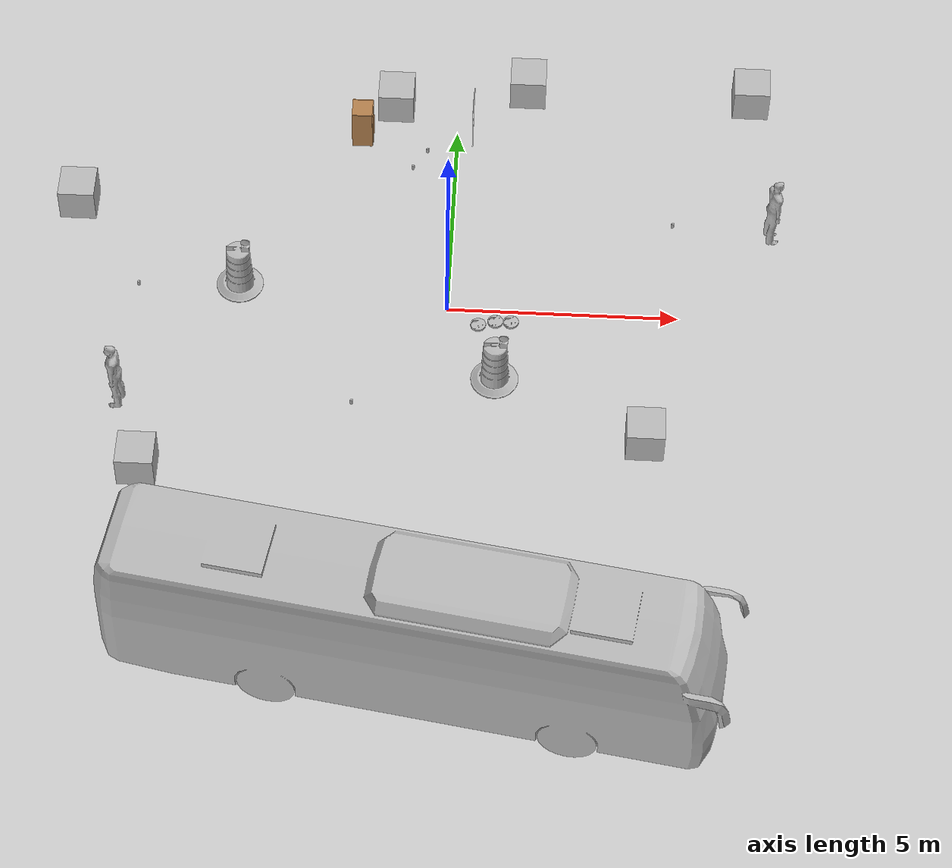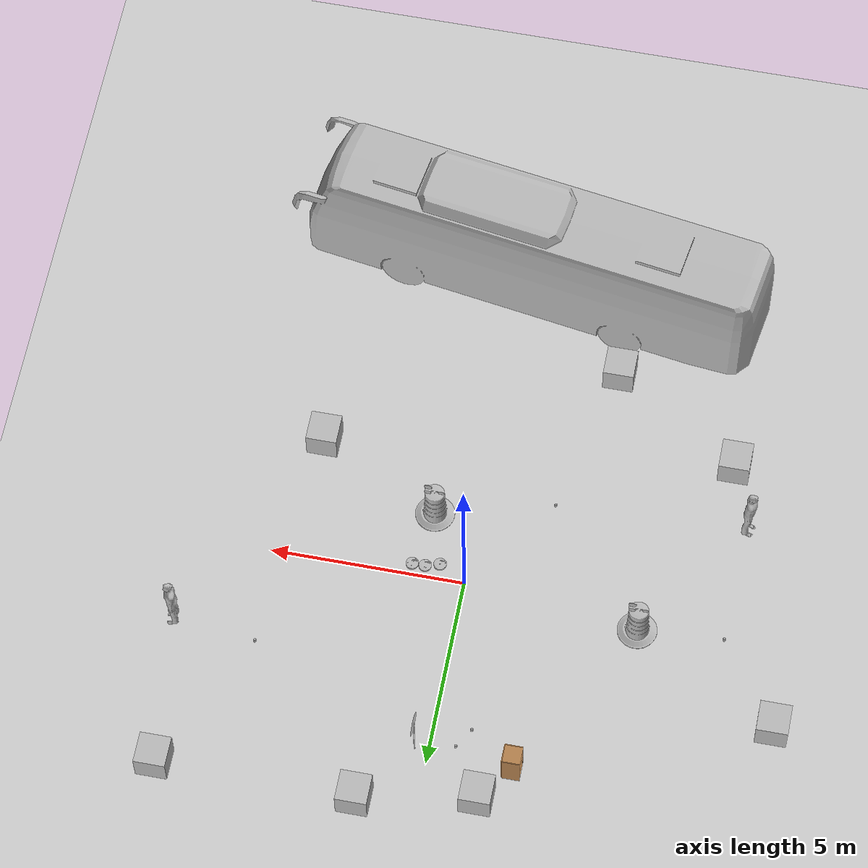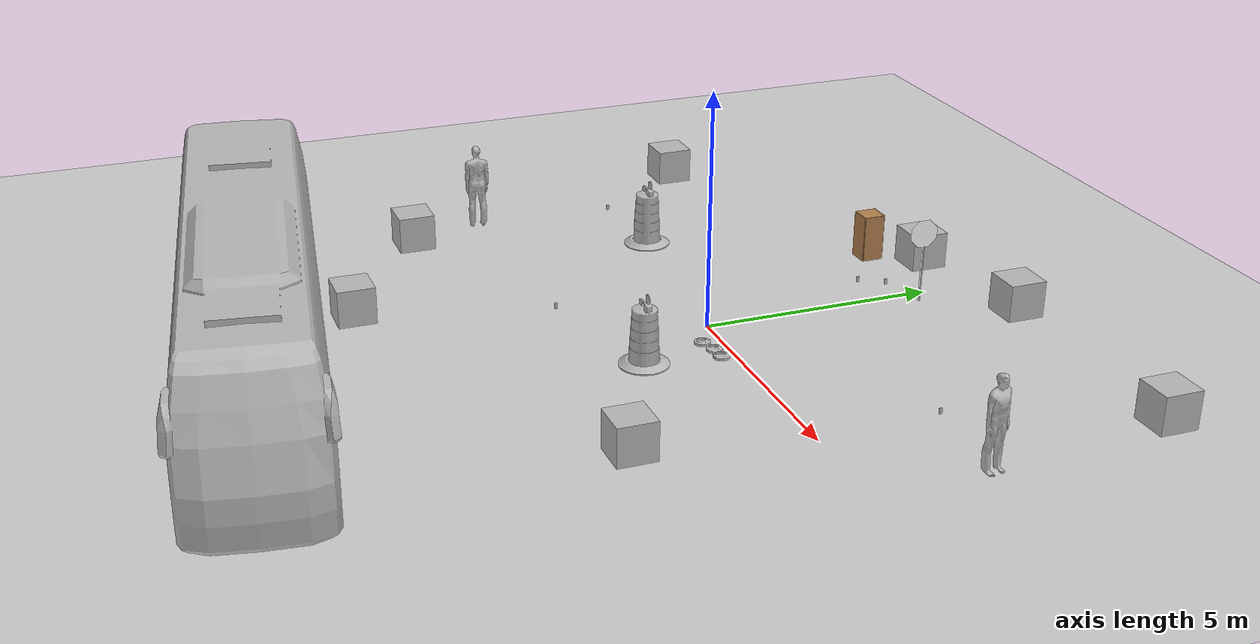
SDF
<sdf version="1.7">
 <world name="default">
  <light name="sun" type="directional">
   <pose>0 0 10 0 -0 0</pose>
   <diffuse>0.8 0.8 0.8 1</diffuse>
   <specular>0.2 0.2 0.2 1</specular>
   <attenuation>
    <range>1000</range>
    <constant>0.9</constant>
    <linear>0.01</linear>
    <quadratic>0.001</quadratic>
   </attenuation>
   <direction>-0.5 0.1 -0.9</direction>
   <spot><inner_angle>0</inner_angle><outer_angle>0</outer_angle><falloff>0</falloff></spot>
  </light>
  <model name="ground_plane">
   <static>1</static>
   <link name="link">
    <collision name="collision">
     <geometry><plane><normal>0 0 1</normal><size>100 100</size></plane></geometry>
     <surface>
      <contact><collide_bitmask>65535</collide_bitmask></contact>
      <friction><ode><mu>100</mu><mu2>50</mu2></ode></friction>
     </surface>
    </collision>
    <visual name="visual">
     <cast_shadows>0</cast_shadows>
     <geometry><plane><normal>0 0 1</normal><size>100 100</size></plane></geometry>
     <material>
      <script><uri>file://media/materials/scripts/gazebo.material</uri><name>Gazebo/Grey</name></script>
     </material>
    </visual>
   </link>
  </model>
  <physics type="ode">
   <real_time_update_rate>1000</real_time_update_rate>
   <max_step_size>0.001</max_step_size>
   <real_time_factor>1</real_time_factor>
   <ode>
    <solver>
     <type>quick</type>
     <iters>150</iters>
     <precon_iters>0</precon_iters>
     <sor>1.4</sor>
     <use_dynamic_moi_rescaling>1</use_dynamic_moi_rescaling>
    </solver>
    <constraints>
     <cfm>1e-05</cfm>
     <erp>0.2</erp>
     <contact_max_correcting_vel>2000</contact_max_correcting_vel>
     <contact_surface_layer>0.01</contact_surface_layer>
    </constraints>
   </ode>
  </physics>
  <scene><ambient>0.4 0.4 0.4 1</ambient><background>0.7 0.7 0.7 1</background><shadows>1</shadows></scene>
  <gravity>0 0 -9.8</gravity>
  <magnetic_field>6e-06 2.3e-05 -4.2e-05</magnetic_field>
  <atmosphere type="adiabatic"/>
  <spherical_coordinates>
   <surface_model>EARTH_WGS84</surface_model>
   <latitude_deg>0</latitude_deg>
   <longitude_deg>0</longitude_deg>
   <elevation>0</elevation>
   <heading_deg>0</heading_deg>
  </spherical_coordinates>
  <model name="bus">
   <static>1</static>
   <link name="link">
    <collision name="collision">
     <geometry><mesh><scale>0.01 0.01 0.01</scale><uri>model://bus/meshes/bus.obj</uri></mesh></geometry>
    </collision>
    <visual name="visual">
     <geometry><mesh><scale>0.01 0.01 0.01</scale><uri>model://bus/meshes/bus.obj</uri></mesh></geometry>
    </visual>
   </link>
   <pose>-0.158528 -9.10371 0 0 -0 1.41584</pose>
  </model>
  <model name="person_standing">
   <link name="link">
    <inertial>
     <pose>0 -0.1 0.95 0 -0 0</pose>
     <mass>80</mass>
     <inertia><ixx>24.88</ixx><ixy>0</ixy><ixz>0</ixz><iyy>25.73</iyy><iyz>0</iyz><izz>2.48</izz></inertia>
    </inertial>
    <collision name="bottom">
     <pose>0 -0.1 0.01 0 -0 0</pose>
     <geometry><box><size>0.5 0.35 0.02</size></box></geometry>
    </collision>
    <collision name="person">
     <pose>0 0 0.02 0.04 -0 0</pose>
     <geometry><mesh><uri>model://person_standing/meshes/standing.dae</uri></mesh></geometry>
    </collision>
    <visual name="visual">
     <pose>0 0 0.02 0.04 -0 0</pose>
     <geometry><mesh><uri>model://person_standing/meshes/standing.dae</uri></mesh></geometry>
    </visual>
   </link>
   <pose>-6.75911 -2.84509 0 0 -1e-06 -1.68288</pose>
  </model>
  <model name="coke_can">
   <link name="link">
    <inertial>
     <pose>0 0 0.06 0 -0 0</pose>
     <mass>0.39</mass>
     <inertia>
      <ixx>0.00055575</ixx>
      <ixy>0</ixy>
      <ixz>0</ixz>
      <iyy>0.00055575</iyy>
      <iyz>0</iyz>
      <izz>0.0001755</izz>
     </inertia>
    </inertial>
    <collision name="collision">
     <pose>0.003937 0.004724 -0.18 0 -0 0</pose>
     <geometry><mesh><uri>model://coke_can/meshes/coke_can.dae</uri></mesh></geometry>
     <surface>
      <friction><ode><mu>1</mu><mu2>1</mu2></ode></friction>
      <contact><ode><kp>1e+07</kp><kd>1</kd><min_depth>0.001</min_depth><max_vel>0.1</max_vel></ode></contact>
     </surface>
    </collision>
    <visual name="visual">
     <pose>0.003937 0.004724 -0.18 0 -0 0</pose>
     <geometry><mesh><uri>model://coke_can/meshes/coke_can.dae</uri></mesh></geometry>
    </visual>
   </link>
   <pose>-1.89973 -2.60244 -0.003529 -0.023468 0.008421 7.7e-05</pose>
  </model>
  <model name="coke_can_clone">
   <link name="link">
    <inertial>
     <pose>0 0 0.06 0 -0 0</pose>
     <mass>0.39</mass>
     <inertia>
      <ixx>0.00055575</ixx>
      <ixy>0</ixy>
      <ixz>0</ixz>
      <iyy>0.00055575</iyy>
      <iyz>0</iyz>
      <izz>0.0001755</izz>
     </inertia>
    </inertial>
    <collision name="collision">
     <pose>0.003937 0.004724 -0.18 0 -0 0</pose>
     <geometry><mesh><uri>model://coke_can/meshes/coke_can.dae</uri></mesh></geometry>
     <surface>
      <friction><ode><mu>1</mu><mu2>1</mu2></ode></friction>
      <contact><ode><kp>1e+07</kp><kd>1</kd><min_depth>0.001</min_depth><max_vel>0.1</max_vel></ode></contact>
     </surface>
    </collision>
    <visual name="visual">
     <pose>0.003937 0.004724 -0.18 0 -0 0</pose>
     <geometry><mesh><uri>model://coke_can/meshes/coke_can.dae</uri></mesh></geometry>
    </visual>
   </link>
   <pose>-0.953712 3.93311 -0.003529 -0.023468 0.008417 7.7e-05</pose>
  </model>
  <model name="coke_can_clone_0">
   <link name="link">
    <inertial>
     <pose>0 0 0.06 0 -0 0</pose>
     <mass>0.39</mass>
     <inertia>
      <ixx>0.00055575</ixx>
      <ixy>0</ixy>
      <ixz>0</ixz>
      <iyy>0.00055575</iyy>
      <iyz>0</iyz>
      <izz>0.0001755</izz>
     </inertia>
    </inertial>
    <collision name="collision">
     <pose>0.003937 0.004724 -0.18 0 -0 0</pose>
     <geometry><mesh><uri>model://coke_can/meshes/coke_can.dae</uri></mesh></geometry>
     <surface>
      <friction><ode><mu>1</mu><mu2>1</mu2></ode></friction>
      <contact><ode><kp>1e+07</kp><kd>1</kd><min_depth>0.001</min_depth><max_vel>0.1</max_vel></ode></contact>
     </surface>
    </collision>
    <visual name="visual">
     <pose>0.003937 0.004724 -0.18 0 -0 0</pose>
     <geometry><mesh><uri>model://coke_can/meshes/coke_can.dae</uri></mesh></geometry>
    </visual>
   </link>
   <pose>-6.73303 0.326526 -0.003529 -0.02347 0.008417 8.5e-05</pose>
  </model>
  <model name="coke_can_clone_1">
   <link name="link">
    <inertial>
     <pose>0 0 0.06 0 -0 0</pose>
     <mass>0.39</mass>
     <inertia>
      <ixx>0.00055575</ixx>
      <ixy>0</ixy>
      <ixz>0</ixz>
      <iyy>0.00055575</iyy>
      <iyz>0</iyz>
      <izz>0.0001755</izz>
     </inertia>
    </inertial>
    <collision name="collision">
     <pose>0.003937 0.004724 -0.18 0 -0 0</pose>
     <geometry><mesh><uri>model://coke_can/meshes/coke_can.dae</uri></mesh></geometry>
     <surface>
      <friction><ode><mu>1</mu><mu2>1</mu2></ode></friction>
      <contact><ode><kp>1e+07</kp><kd>1</kd><min_depth>0.001</min_depth><max_vel>0.1</max_vel></ode></contact>
     </surface>
    </collision>
    <visual name="visual">
     <pose>0.003937 0.004724 -0.18 0 -0 0</pose>
     <geometry><mesh><uri>model://coke_can/meshes/coke_can.dae</uri></mesh></geometry>
    </visual>
   </link>
   <pose>-0.647136 4.44399 -0.003529 -0.023463 0.008425 9.4e-05</pose>
  </model>
  <model name="coke_can_clone_2">
   <link name="link">
    <inertial>
     <pose>0 0 0.06 0 -0 0</pose>
     <mass>0.39</mass>
     <inertia>
      <ixx>0.00055575</ixx>
      <ixy>0</ixy>
      <ixz>0</ixz>
      <iyy>0.00055575</iyy>
      <iyz>0</iyz>
      <izz>0.0001755</izz>
     </inertia>
    </inertial>
    <collision name="collision">
     <pose>0.003937 0.004724 -0.18 0 -0 0</pose>
     <geometry><mesh><uri>model://coke_can/meshes/coke_can.dae</uri></mesh></geometry>
     <surface>
      <friction><ode><mu>1</mu><mu2>1</mu2></ode></friction>
      <contact><ode><kp>1e+07</kp><kd>1</kd><min_depth>0.001</min_depth><max_vel>0.1</max_vel></ode></contact>
     </surface>
    </collision>
    <visual name="visual">
     <pose>0.003937 0.004724 -0.18 0 -0 0</pose>
     <geometry><mesh><uri>model://coke_can/meshes/coke_can.dae</uri></mesh></geometry>
    </visual>
   </link>
   <pose>4.8657 2.56281 -0.003529 -0.023466 0.00842 0.000101</pose>
  </model>
  <model name="person_standing_clone">
   <link name="link">
    <inertial>
     <pose>0 -0.1 0.95 0 -0 0</pose>
     <mass>80</mass>
     <inertia><ixx>24.88</ixx><ixy>0</ixy><ixz>0</ixz><iyy>25.73</iyy><iyz>0</iyz><izz>2.48</izz></inertia>
    </inertial>
    <collision name="bottom">
     <pose>0 -0.1 0.01 0 -0 0</pose>
     <geometry><box><size>0.5 0.35 0.02</size></box></geometry>
    </collision>
    <collision name="person">
     <pose>0 0 0.02 0.04 -0 0</pose>
     <geometry><mesh><uri>model://person_standing/meshes/standing.dae</uri></mesh></geometry>
    </collision>
    <visual name="visual">
     <pose>0 0 0.02 0.04 -0 0</pose>
     <geometry><mesh><uri>model://person_standing/meshes/standing.dae</uri></mesh></geometry>
    </visual>
   </link>
   <pose>6.93446 2.30813 -0 -0 1e-06 1.78757</pose>
  </model>
  <model name="Stop Sign">
   <static>1</static>
   <link name="link">
    <collision name="collision">
     <geometry><mesh><uri>model://stop_sign/meshes/stop_sign.dae</uri></mesh></geometry>
    </collision>
    <visual name="visual">
     <geometry><mesh><uri>model://stop_sign/meshes/stop_sign.dae</uri></mesh></geometry>
     <material>
      <script>
       <uri>model://stop_sign/materials/scripts</uri>
       <uri>model://stop_sign/materials/textures</uri>
       <name>StopSign/Diffuse</name>
      </script>
     </material>
    </visual>
   </link>
   <pose>0.351061 4.67624 0 0 -0 1.5348</pose>
  </model>
  <model name="create">
   <link name="base">
    <inertial>
     <pose>0.001453 -0.000453 0.029787 0 -0 0</pose>
     <inertia>
      <ixx>0.05864</ixx>
      <ixy>0.000124</ixy>
      <ixz>0.000615</ixz>
      <iyy>0.058786</iyy>
      <iyz>1.4e-05</iyz>
      <izz>1.53244</izz>
     </inertia>
     <mass>2.234</mass>
    </inertial>
    <collision name="base_collision">
     <pose>0 0 0.0478 0 -0 0</pose>
     <geometry><cylinder><radius>0.016495</radius><length>0.061163</length></cylinder></geometry>
    </collision>
    <visual name="base_visual">
     <pose>0 0 0.0478 0 -0 0</pose>
     <geometry><mesh><uri>model://create/meshes/create_body.dae</uri></mesh></geometry>
    </visual>
    <collision name="front_wheel_collision">
     <pose>0.13 0 0.017 -0 1.5707 1.5707</pose>
     <geometry><sphere><radius>0.018</radius></sphere></geometry>
     <surface>
      <friction><ode><mu>0</mu><mu2>0</mu2><fdir1>0 0 0</fdir1><slip1>0</slip1><slip2>0</slip2></ode></friction>
     </surface>
    </collision>
    <visual name="front_wheel_visual">
     <pose>0.13 0 0.017 -0 1.5707 1.5707</pose>
     <geometry><sphere><radius>0.009</radius></sphere></geometry>
    </visual>
    <collision name="rear_wheel_collision">
     <pose>-0.13 0 0.017 -0 1.5707 1.5707</pose>
     <geometry><sphere><radius>0.015</radius></sphere></geometry>
     <surface>
      <friction><ode><mu>0</mu><mu2>0</mu2><fdir1>0 0 0</fdir1><slip1>0</slip1><slip2>0</slip2></ode></friction>
     </surface>
    </collision>
    <visual name="rear_wheel_visual">
     <pose>-0.13 0 0.017 -0 1.5707 1.5707</pose>
     <geometry><sphere><radius>0.0075</radius></sphere></geometry>
    </visual>
    <sensor name="left_cliff_sensor" type="ray">
     <pose>0.07 0.14 0.027 0 1.57079 0</pose>
     <ray>
      <scan>
       <horizontal>
        <samples>1</samples>
        <resolution>1</resolution>
        <min_angle>0</min_angle>
        <max_angle>0</max_angle>
       </horizontal>
       <vertical><samples>1</samples><min_angle>0</min_angle><max_angle>0</max_angle></vertical>
      </scan>
      <range><min>0.01</min><max>0.04</max><resolution>0.1</resolution></range>
     </ray>
    </sensor>
    <sensor name="leftfront_cliff_sensor" type="ray">
     <pose>0.15 0.04 0.027 0 1.57079 0</pose>
     <ray>
      <scan>
       <horizontal>
        <samples>1</samples>
        <resolution>1</resolution>
        <min_angle>0</min_angle>
        <max_angle>0</max_angle>
       </horizontal>
       <vertical><samples>1</samples><min_angle>0</min_angle><max_angle>0</max_angle></vertical>
      </scan>
      <range><min>0.01</min><max>0.04</max><resolution>0.1</resolution></range>
     </ray>
    </sensor>
    <sensor name="right_cliff_sensor" type="ray">
     <pose>0.07 -0.14 0.027 0 1.57079 0</pose>
     <ray>
      <scan>
       <horizontal>
        <samples>1</samples>
        <resolution>1</resolution>
        <min_angle>0</min_angle>
        <max_angle>0</max_angle>
       </horizontal>
       <vertical><samples>1</samples><min_angle>0</min_angle><max_angle>0</max_angle></vertical>
      </scan>
      <range><min>0.01</min><max>0.04</max><resolution>0.1</resolution></range>
     </ray>
    </sensor>
    <sensor name="rightfront_cliff_sensor" type="ray">
     <pose>0.15 -0.04 0.027 0 1.57079 0</pose>
     <ray>
      <scan>
       <horizontal>
        <samples>1</samples>
        <resolution>1</resolution>
        <min_angle>0</min_angle>
        <max_angle>0</max_angle>
       </horizontal>
       <vertical><samples>1</samples><min_angle>0</min_angle><max_angle>0</max_angle></vertical>
      </scan>
      <range><min>0.01</min><max>0.04</max><resolution>0.1</resolution></range>
     </ray>
    </sensor>
    <sensor name="wall_sensor" type="ray">
     <pose>0.09 -0.12 0.059 0 0 -1</pose>
     <ray>
      <scan>
       <horizontal>
        <samples>1</samples>
        <resolution>1</resolution>
        <min_angle>0</min_angle>
        <max_angle>0</max_angle>
       </horizontal>
       <vertical><samples>1</samples><min_angle>0</min_angle><max_angle>0</max_angle></vertical>
      </scan>
      <range><min>0.016</min><max>0.04</max><resolution>0.1</resolution></range>
     </ray>
    </sensor>
   </link>
   <link name="left_wheel">
    <pose>0 0.13 0.032 0 -0 0</pose>
    <inertial>
     <inertia><ixx>0.001</ixx><ixy>0</ixy><ixz>0</ixz><iyy>0.001</iyy><iyz>0</iyz><izz>0.001</izz></inertia>
     <mass>0.01</mass>
    </inertial>
    <collision name="collision">
     <pose>0 0 0 -0 1.5707 1.5707</pose>
     <geometry><cylinder><radius>0.033</radius><length>0.023</length></cylinder></geometry>
     <surface>
      <friction><ode><mu>10</mu><mu2>10</mu2><fdir1>0 0 0</fdir1><slip1>0</slip1><slip2>0</slip2></ode></friction>
     </surface>
    </collision>
    <visual name="visual">
     <pose>0 0 0 -0 1.5707 1.5707</pose>
     <geometry><cylinder><radius>0.033</radius><length>0.023</length></cylinder></geometry>
    </visual>
   </link>
   <link name="right_wheel">
    <pose>0 -0.13 0.032 0 -0 0</pose>
    <inertial>
     <inertia><ixx>0.001</ixx><ixy>0</ixy><ixz>0</ixz><iyy>0.001</iyy><iyz>0</iyz><izz>0.001</izz></inertia>
     <mass>0.01</mass>
    </inertial>
    <collision name="collision">
     <pose>0 0 0 -0 1.5707 1.5707</pose>
     <geometry><cylinder><radius>0.033</radius><length>0.023</length></cylinder></geometry>
     <surface>
      <friction><ode><mu>10</mu><mu2>10</mu2><fdir1>0 0 0</fdir1><slip1>0</slip1><slip2>0</slip2></ode></friction>
     </surface>
    </collision>
    <visual name="visual">
     <pose>0 0 0 -0 1.5707 1.5707</pose>
     <geometry><cylinder><radius>0.033</radius><length>0.023</length></cylinder></geometry>
    </visual>
   </link>
   <joint name="left_wheel" type="revolute">
    <parent>base</parent>
    <child>left_wheel</child>
    <axis>
     <xyz expressed_in="__model__">0 1 0</xyz>
     <limit><lower>-1e+16</lower><upper>1e+16</upper></limit>
     <dynamics><spring_reference>0</spring_reference><spring_stiffness>0</spring_stiffness></dynamics>
    </axis>
   </joint>
   <joint name="right_wheel" type="revolute">
    <parent>base</parent>
    <child>right_wheel</child>
    <axis>
     <xyz expressed_in="__model__">0 1 0</xyz>
     <limit><lower>-1e+16</lower><upper>1e+16</upper></limit>
     <dynamics><spring_reference>0</spring_reference><spring_stiffness>0</spring_stiffness></dynamics>
    </axis>
   </joint>
   <pose>1.39762 -0.298604 0.000992 1.1e-05 -0.000191 0.070817</pose>
  </model>
  <model name="create_clone">
   <link name="base">
    <inertial>
     <pose>0.001453 -0.000453 0.029787 0 -0 0</pose>
     <inertia>
      <ixx>0.05864</ixx>
      <ixy>0.000124</ixy>
      <ixz>0.000615</ixz>
      <iyy>0.058786</iyy>
      <iyz>1.4e-05</iyz>
      <izz>1.53244</izz>
     </inertia>
     <mass>2.234</mass>
    </inertial>
    <collision name="base_collision">
     <pose>0 0 0.0478 0 -0 0</pose>
     <geometry><cylinder><radius>0.016495</radius><length>0.061163</length></cylinder></geometry>
    </collision>
    <visual name="base_visual">
     <pose>0 0 0.0478 0 -0 0</pose>
     <geometry><mesh><uri>model://create/meshes/create_body.dae</uri></mesh></geometry>
    </visual>
    <collision name="front_wheel_collision">
     <pose>0.13 0 0.017 -0 1.5707 1.5707</pose>
     <geometry><sphere><radius>0.018</radius></sphere></geometry>
     <surface>
      <friction><ode><mu>0</mu><mu2>0</mu2><fdir1>0 0 0</fdir1><slip1>0</slip1><slip2>0</slip2></ode></friction>
     </surface>
    </collision>
    <visual name="front_wheel_visual">
     <pose>0.13 0 0.017 -0 1.5707 1.5707</pose>
     <geometry><sphere><radius>0.009</radius></sphere></geometry>
    </visual>
    <collision name="rear_wheel_collision">
     <pose>-0.13 0 0.017 -0 1.5707 1.5707</pose>
     <geometry><sphere><radius>0.015</radius></sphere></geometry>
     <surface>
      <friction><ode><mu>0</mu><mu2>0</mu2><fdir1>0 0 0</fdir1><slip1>0</slip1><slip2>0</slip2></ode></friction>
     </surface>
    </collision>
    <visual name="rear_wheel_visual">
     <pose>-0.13 0 0.017 -0 1.5707 1.5707</pose>
     <geometry><sphere><radius>0.0075</radius></sphere></geometry>
    </visual>
    <sensor name="left_cliff_sensor" type="ray">
     <pose>0.07 0.14 0.027 0 1.57079 0</pose>
     <ray>
      <scan>
       <horizontal>
        <samples>1</samples>
        <resolution>1</resolution>
        <min_angle>0</min_angle>
        <max_angle>0</max_angle>
       </horizontal>
       <vertical><samples>1</samples><min_angle>0</min_angle><max_angle>0</max_angle></vertical>
      </scan>
      <range><min>0.01</min><max>0.04</max><resolution>0.1</resolution></range>
     </ray>
    </sensor>
    <sensor name="leftfront_cliff_sensor" type="ray">
     <pose>0.15 0.04 0.027 0 1.57079 0</pose>
     <ray>
      <scan>
       <horizontal>
        <samples>1</samples>
        <resolution>1</resolution>
        <min_angle>0</min_angle>
        <max_angle>0</max_angle>
       </horizontal>
       <vertical><samples>1</samples><min_angle>0</min_angle><max_angle>0</max_angle></vertical>
      </scan>
      <range><min>0.01</min><max>0.04</max><resolution>0.1</resolution></range>
     </ray>
    </sensor>
    <sensor name="right_cliff_sensor" type="ray">
     <pose>0.07 -0.14 0.027 0 1.57079 0</pose>
     <ray>
      <scan>
       <horizontal>
        <samples>1</samples>
        <resolution>1</resolution>
        <min_angle>0</min_angle>
        <max_angle>0</max_angle>
       </horizontal>
       <vertical><samples>1</samples><min_angle>0</min_angle><max_angle>0</max_angle></vertical>
      </scan>
      <range><min>0.01</min><max>0.04</max><resolution>0.1</resolution></range>
     </ray>
    </sensor>
    <sensor name="rightfront_cliff_sensor" type="ray">
     <pose>0.15 -0.04 0.027 0 1.57079 0</pose>
     <ray>
      <scan>
       <horizontal>
        <samples>1</samples>
        <resolution>1</resolution>
        <min_angle>0</min_angle>
        <max_angle>0</max_angle>
       </horizontal>
       <vertical><samples>1</samples><min_angle>0</min_angle><max_angle>0</max_angle></vertical>
      </scan>
      <range><min>0.01</min><max>0.04</max><resolution>0.1</resolution></range>
     </ray>
    </sensor>
    <sensor name="wall_sensor" type="ray">
     <pose>0.09 -0.12 0.059 0 0 -1</pose>
     <ray>
      <scan>
       <horizontal>
        <samples>1</samples>
        <resolution>1</resolution>
        <min_angle>0</min_angle>
        <max_angle>0</max_angle>
       </horizontal>
       <vertical><samples>1</samples><min_angle>0</min_angle><max_angle>0</max_angle></vertical>
      </scan>
      <range><min>0.016</min><max>0.04</max><resolution>0.1</resolution></range>
     </ray>
    </sensor>
   </link>
   <link name="left_wheel">
    <pose>0 0.13 0.032 0 -0 0</pose>
    <inertial>
     <inertia><ixx>0.001</ixx><ixy>0</ixy><ixz>0</ixz><iyy>0.001</iyy><iyz>0</iyz><izz>0.001</izz></inertia>
     <mass>0.01</mass>
    </inertial>
    <collision name="collision">
     <pose>0 0 0 -0 1.5707 1.5707</pose>
     <geometry><cylinder><radius>0.033</radius><length>0.023</length></cylinder></geometry>
     <surface>
      <friction><ode><mu>10</mu><mu2>10</mu2><fdir1>0 0 0</fdir1><slip1>0</slip1><slip2>0</slip2></ode></friction>
     </surface>
    </collision>
    <visual name="visual">
     <pose>0 0 0 -0 1.5707 1.5707</pose>
     <geometry><cylinder><radius>0.033</radius><length>0.023</length></cylinder></geometry>
    </visual>
   </link>
   <link name="right_wheel">
    <pose>0 -0.13 0.032 0 -0 0</pose>
    <inertial>
     <inertia><ixx>0.001</ixx><ixy>0</ixy><ixz>0</ixz><iyy>0.001</iyy><iyz>0</iyz><izz>0.001</izz></inertia>
     <mass>0.01</mass>
    </inertial>
    <collision name="collision">
     <pose>0 0 0 -0 1.5707 1.5707</pose>
     <geometry><cylinder><radius>0.033</radius><length>0.023</length></cylinder></geometry>
     <surface>
      <friction><ode><mu>10</mu><mu2>10</mu2><fdir1>0 0 0</fdir1><slip1>0</slip1><slip2>0</slip2></ode></friction>
     </surface>
    </collision>
    <visual name="visual">
     <pose>0 0 0 -0 1.5707 1.5707</pose>
     <geometry><cylinder><radius>0.033</radius><length>0.023</length></cylinder></geometry>
    </visual>
   </link>
   <joint name="left_wheel" type="revolute">
    <parent>base</parent>
    <child>left_wheel</child>
    <axis>
     <xyz expressed_in="__model__">0 1 0</xyz>
     <limit><lower>-1e+16</lower><upper>1e+16</upper></limit>
     <dynamics><spring_reference>0</spring_reference><spring_stiffness>0</spring_stiffness></dynamics>
    </axis>
   </joint>
   <joint name="right_wheel" type="revolute">
    <parent>base</parent>
    <child>right_wheel</child>
    <axis>
     <xyz expressed_in="__model__">0 1 0</xyz>
     <limit><lower>-1e+16</lower><upper>1e+16</upper></limit>
     <dynamics><spring_reference>0</spring_reference><spring_stiffness>0</spring_stiffness></dynamics>
    </axis>
   </joint>
   <pose>1.06444 -0.30017 0.000991 -1.9e-05 -0.00015 0.075143</pose>
  </model>
  <model name="create_clone_0">
   <link name="base">
    <inertial>
     <pose>0.001453 -0.000453 0.029787 0 -0 0</pose>
     <inertia>
      <ixx>0.05864</ixx>
      <ixy>0.000124</ixy>
      <ixz>0.000615</ixz>
      <iyy>0.058786</iyy>
      <iyz>1.4e-05</iyz>
      <izz>1.53244</izz>
     </inertia>
     <mass>2.234</mass>
    </inertial>
    <collision name="base_collision">
     <pose>0 0 0.0478 0 -0 0</pose>
     <geometry><cylinder><radius>0.016495</radius><length>0.061163</length></cylinder></geometry>
    </collision>
    <visual name="base_visual">
     <pose>0 0 0.0478 0 -0 0</pose>
     <geometry><mesh><uri>model://create/meshes/create_body.dae</uri></mesh></geometry>
    </visual>
    <collision name="front_wheel_collision">
     <pose>0.13 0 0.017 -0 1.5707 1.5707</pose>
     <geometry><sphere><radius>0.018</radius></sphere></geometry>
     <surface>
      <friction><ode><mu>0</mu><mu2>0</mu2><fdir1>0 0 0</fdir1><slip1>0</slip1><slip2>0</slip2></ode></friction>
     </surface>
    </collision>
    <visual name="front_wheel_visual">
     <pose>0.13 0 0.017 -0 1.5707 1.5707</pose>
     <geometry><sphere><radius>0.009</radius></sphere></geometry>
    </visual>
    <collision name="rear_wheel_collision">
     <pose>-0.13 0 0.017 -0 1.5707 1.5707</pose>
     <geometry><sphere><radius>0.015</radius></sphere></geometry>
     <surface>
      <friction><ode><mu>0</mu><mu2>0</mu2><fdir1>0 0 0</fdir1><slip1>0</slip1><slip2>0</slip2></ode></friction>
     </surface>
    </collision>
    <visual name="rear_wheel_visual">
     <pose>-0.13 0 0.017 -0 1.5707 1.5707</pose>
     <geometry><sphere><radius>0.0075</radius></sphere></geometry>
    </visual>
    <sensor name="left_cliff_sensor" type="ray">
     <pose>0.07 0.14 0.027 0 1.57079 0</pose>
     <ray>
      <scan>
       <horizontal>
        <samples>1</samples>
        <resolution>1</resolution>
        <min_angle>0</min_angle>
        <max_angle>0</max_angle>
       </horizontal>
       <vertical><samples>1</samples><min_angle>0</min_angle><max_angle>0</max_angle></vertical>
      </scan>
      <range><min>0.01</min><max>0.04</max><resolution>0.1</resolution></range>
     </ray>
    </sensor>
    <sensor name="leftfront_cliff_sensor" type="ray">
     <pose>0.15 0.04 0.027 0 1.57079 0</pose>
     <ray>
      <scan>
       <horizontal>
        <samples>1</samples>
        <resolution>1</resolution>
        <min_angle>0</min_angle>
        <max_angle>0</max_angle>
       </horizontal>
       <vertical><samples>1</samples><min_angle>0</min_angle><max_angle>0</max_angle></vertical>
      </scan>
      <range><min>0.01</min><max>0.04</max><resolution>0.1</resolution></range>
     </ray>
    </sensor>
    <sensor name="right_cliff_sensor" type="ray">
     <pose>0.07 -0.14 0.027 0 1.57079 0</pose>
     <ray>
      <scan>
       <horizontal>
        <samples>1</samples>
        <resolution>1</resolution>
        <min_angle>0</min_angle>
        <max_angle>0</max_angle>
       </horizontal>
       <vertical><samples>1</samples><min_angle>0</min_angle><max_angle>0</max_angle></vertical>
      </scan>
      <range><min>0.01</min><max>0.04</max><resolution>0.1</resolution></range>
     </ray>
    </sensor>
    <sensor name="rightfront_cliff_sensor" type="ray">
     <pose>0.15 -0.04 0.027 0 1.57079 0</pose>
     <ray>
      <scan>
       <horizontal>
        <samples>1</samples>
        <resolution>1</resolution>
        <min_angle>0</min_angle>
        <max_angle>0</max_angle>
       </horizontal>
       <vertical><samples>1</samples><min_angle>0</min_angle><max_angle>0</max_angle></vertical>
      </scan>
      <range><min>0.01</min><max>0.04</max><resolution>0.1</resolution></range>
     </ray>
    </sensor>
    <sensor name="wall_sensor" type="ray">
     <pose>0.09 -0.12 0.059 0 0 -1</pose>
     <ray>
      <scan>
       <horizontal>
        <samples>1</samples>
        <resolution>1</resolution>
        <min_angle>0</min_angle>
        <max_angle>0</max_angle>
       </horizontal>
       <vertical><samples>1</samples><min_angle>0</min_angle><max_angle>0</max_angle></vertical>
      </scan>
      <range><min>0.016</min><max>0.04</max><resolution>0.1</resolution></range>
     </ray>
    </sensor>
   </link>
   <link name="left_wheel">
    <pose>0 0.13 0.032 0 -0 0</pose>
    <inertial>
     <inertia><ixx>0.001</ixx><ixy>0</ixy><ixz>0</ixz><iyy>0.001</iyy><iyz>0</iyz><izz>0.001</izz></inertia>
     <mass>0.01</mass>
    </inertial>
    <collision name="collision">
     <pose>0 0 0 -0 1.5707 1.5707</pose>
     <geometry><cylinder><radius>0.033</radius><length>0.023</length></cylinder></geometry>
     <surface>
      <friction><ode><mu>10</mu><mu2>10</mu2><fdir1>0 0 0</fdir1><slip1>0</slip1><slip2>0</slip2></ode></friction>
     </surface>
    </collision>
    <visual name="visual">
     <pose>0 0 0 -0 1.5707 1.5707</pose>
     <geometry><cylinder><radius>0.033</radius><length>0.023</length></cylinder></geometry>
    </visual>
   </link>
   <link name="right_wheel">
    <pose>0 -0.13 0.032 0 -0 0</pose>
    <inertial>
     <inertia><ixx>0.001</ixx><ixy>0</ixy><ixz>0</ixz><iyy>0.001</iyy><iyz>0</iyz><izz>0.001</izz></inertia>
     <mass>0.01</mass>
    </inertial>
    <collision name="collision">
     <pose>0 0 0 -0 1.5707 1.5707</pose>
     <geometry><cylinder><radius>0.033</radius><length>0.023</length></cylinder></geometry>
     <surface>
      <friction><ode><mu>10</mu><mu2>10</mu2><fdir1>0 0 0</fdir1><slip1>0</slip1><slip2>0</slip2></ode></friction>
     </surface>
    </collision>
    <visual name="visual">
     <pose>0 0 0 -0 1.5707 1.5707</pose>
     <geometry><cylinder><radius>0.033</radius><length>0.023</length></cylinder></geometry>
    </visual>
   </link>
   <joint name="left_wheel" type="revolute">
    <parent>base</parent>
    <child>left_wheel</child>
    <axis>
     <xyz expressed_in="__model__">0 1 0</xyz>
     <limit><lower>-1e+16</lower><upper>1e+16</upper></limit>
     <dynamics><spring_reference>0</spring_reference><spring_stiffness>0</spring_stiffness></dynamics>
    </axis>
   </joint>
   <joint name="right_wheel" type="revolute">
    <parent>base</parent>
    <child>right_wheel</child>
    <axis>
     <xyz expressed_in="__model__">0 1 0</xyz>
     <limit><lower>-1e+16</lower><upper>1e+16</upper></limit>
     <dynamics><spring_reference>0</spring_reference><spring_stiffness>0</spring_stiffness></dynamics>
    </axis>
   </joint>
   <pose>0.696047 -0.404375 0.000988 -1.8e-05 -0.000185 0.080327</pose>
  </model>
  <model name="Construction Barrel">
   <link name="link">
    <inertial>
     <pose>0 0 0.4 0 -0 0</pose>
     <mass>500</mass>
     <inertia><ixx>51.2096</ixx><iyy>51.2096</iyy><izz>25</izz><ixy>0</ixy><ixz>0</ixz><iyz>0</iyz></inertia>
    </inertial>
    <collision name="collision">
     <geometry><mesh><uri>model://construction_barrel/meshes/construction_barrel.dae</uri></mesh></geometry>
    </collision>
    <visual name="visual">
     <geometry><mesh><uri>model://construction_barrel/meshes/construction_barrel.dae</uri></mesh></geometry>
    </visual>
   </link>
   <pose>1.10053 -1.81217 -0 0 -0 0</pose>
  </model>
  <model name="Construction Barrel_clone">
   <link name="link">
    <inertial>
     <pose>0 0 0.4 0 -0 0</pose>
     <mass>500</mass>
     <inertia><ixx>51.2096</ixx><iyy>51.2096</iyy><izz>25</izz><ixy>0</ixy><ixz>0</ixz><iyz>0</iyz></inertia>
    </inertial>
    <collision name="collision">
     <geometry><mesh><uri>model://construction_barrel/meshes/construction_barrel.dae</uri></mesh></geometry>
    </collision>
    <visual name="visual">
     <geometry><mesh><uri>model://construction_barrel/meshes/construction_barrel.dae</uri></mesh></geometry>
    </visual>
   </link>
   <pose>-4.53227 0.46045 -0 0 -0 0</pose>
  </model>
  <model name="cabinet_2">
   <static>1</static>
   <link name="cabinet_bottom_plate">
    <inertial>
     <pose>0 0 -1 0 -0 0</pose>
     <inertia><ixx>2.05</ixx><ixy>0</ixy><ixz>0</ixz><iyy>2.05</iyy><iyz>0</iyz><izz>2.05</izz></inertia>
     <mass>25</mass>
    </inertial>
    <collision name="cabinet_bottom_plate_geom">
     <pose>0 0 0.01 0 -0 0</pose>
     <geometry><box><size>0.45 0.45 0.02</size></box></geometry>
    </collision>
    <visual name="cabinet_bottom_plate_geom_visual">
     <pose>0 0 0.01 0 -0 0</pose>
     <geometry><box><size>0.45 0.45 0.02</size></box></geometry>
     <material>
      <script><uri>file://media/materials/scripts/gazebo.material</uri><name>Gazebo/Wood</name></script>
     </material>
    </visual>
    <collision name="cabinet_bottom_plate_geom_cabinet_back_plate">
     <pose>0.235 0 0.51 0 -0 0</pose>
     <geometry><box><size>0.02 0.45 1.02</size></box></geometry>
    </collision>
    <visual name="cabinet_bottom_plate_geom_cabinet_back_plate_visual">
     <pose>0.235 0 0.51 0 -0 0</pose>
     <geometry><box><size>0.02 0.45 1.02</size></box></geometry>
     <material>
      <script><uri>file://media/materials/scripts/gazebo.material</uri><name>Gazebo/Wood</name></script>
     </material>
    </visual>
    <collision name="cabinet_bottom_plate_geom_cabinet_left_plate">
     <pose>0 0.235 0.51 0 -0 0</pose>
     <geometry><box><size>0.45 0.02 1.02</size></box></geometry>
    </collision>
    <visual name="cabinet_bottom_plate_geom_cabinet_left_plate_visual">
     <pose>0 0.235 0.51 0 -0 0</pose>
     <geometry><box><size>0.45 0.02 1.02</size></box></geometry>
     <material>
      <script><uri>file://media/materials/scripts/gazebo.material</uri><name>Gazebo/Wood</name></script>
     </material>
    </visual>
    <collision name="cabinet_bottom_plate_geom_cabinet_middle_plate">
     <pose>0 0 0.51 0 -0 0</pose>
     <geometry><box><size>0.45 0.45 0.02</size></box></geometry>
    </collision>
    <visual name="cabinet_bottom_plate_geom_cabinet_middle_plate_visual">
     <pose>0 0 0.51 0 -0 0</pose>
     <geometry><box><size>0.45 0.45 0.02</size></box></geometry>
     <material>
      <script><uri>file://media/materials/scripts/gazebo.material</uri><name>Gazebo/Wood</name></script>
     </material>
    </visual>
    <collision name="cabinet_bottom_plate_geom_cabinet_right_plate">
     <pose>0 -0.235 0.51 0 -0 0</pose>
     <geometry><box><size>0.45 0.02 1.02</size></box></geometry>
    </collision>
    <visual name="cabinet_bottom_plate_geom_cabinet_right_plate_visual">
     <pose>0 -0.235 0.51 0 -0 0</pose>
     <geometry><box><size>0.45 0.02 1.02</size></box></geometry>
     <material>
      <script><uri>file://media/materials/scripts/gazebo.material</uri><name>Gazebo/Wood</name></script>
     </material>
    </visual>
    <collision name="cabinet_bottom_plate_geom_cabinet_top_plate">
     <pose>0 0 1.01 0 -0 0</pose>
     <geometry><box><size>0.45 0.45 0.02</size></box></geometry>
    </collision>
    <visual name="cabinet_bottom_plate_geom_cabinet_top_plate_visual">
     <pose>0 0 1.01 0 -0 0</pose>
     <geometry><box><size>0.45 0.45 0.02</size></box></geometry>
     <material>
      <script><uri>file://media/materials/scripts/gazebo.material</uri><name>Gazebo/Wood</name></script>
     </material>
    </visual>
   </link>
   <pose>-2.13248 4.79518 0 0 -0 0</pose>
  </model>
  <model name="number1">
   <pose>-6.23623 -4.52395 0.4 0 -0 0</pose>
   <static>1</static>
   <link name="link">
    <visual name="visual">
     <geometry><mesh><uri>model://number1/meshes/number.dae</uri></mesh></geometry>
     <material>
      <script>
       <uri>model://number1/materials/scripts</uri>
       <uri>model://number1/materials/textures</uri>
       <name>Number/One</name>
      </script>
     </material>
    </visual>
   </link>
  </model>
  <model name="number2">
   <pose>-8.28071 2.52128 0.4 0 -0 0</pose>
   <static>1</static>
   <link name="link">
    <visual name="visual">
     <geometry><mesh><uri>model://number1/meshes/number.dae</uri></mesh></geometry>
     <material>
      <script>
       <uri>model://number2/materials/scripts</uri>
       <uri>model://number2/materials/textures</uri>
       <name>Number/Two</name>
      </script>
     </material>
    </visual>
   </link>
  </model>
  <model name="number3">
   <pose>-1.41511 5.71083 0.4 0 -0 0</pose>
   <static>1</static>
   <link name="link">
    <visual name="visual">
     <geometry><mesh><uri>model://number1/meshes/number.dae</uri></mesh></geometry>
     <material>
      <script>
       <uri>model://number3/materials/scripts</uri>
       <uri>model://number3/materials/textures</uri>
       <name>Number/Three</name>
      </script>
     </material>
    </visual>
   </link>
  </model>
  <model name="number4">
   <pose>1.54807 6.27247 0.4 0 -0 0</pose>
   <static>1</static>
   <link name="link">
    <visual name="visual">
     <geometry><mesh><uri>model://number1/meshes/number.dae</uri></mesh></geometry>
     <material>
      <script>
       <uri>model://number4/materials/scripts</uri>
       <uri>model://number4/materials/textures</uri>
       <name>Number/Four</name>
      </script>
     </material>
    </visual>
   </link>
  </model>
  <model name="number5">
   <pose>6.60226 6.22623 0.4 0 -0 0</pose>
   <static>1</static>
   <link name="link">
    <visual name="visual">
     <geometry><mesh><uri>model://number1/meshes/number.dae</uri></mesh></geometry>
     <material>
      <script>
       <uri>model://number5/materials/scripts</uri>
       <uri>model://number5/materials/textures</uri>
       <name>Number/Five</name>
      </script>
     </material>
    </visual>
   </link>
  </model>
  <model name="number6">
   <pose>4.30675 -3.33596 0.4 0 -0 0</pose>
   <static>1</static>
   <link name="link">
    <visual name="visual">
     <geometry><mesh><uri>model://number1/meshes/number.dae</uri></mesh></geometry>
     <material>
      <script>
       <uri>model://number6/materials/scripts</uri>
       <uri>model://number6/materials/textures</uri>
       <name>Number/Six</name>
      </script>
     </material>
    </visual>
   </link>
  </model>
  <model name="number7">
   <pose>-2.8711 -6.65652 0.4 0 -0 0</pose>
   <static>1</static>
   <link name="link">
    <visual name="visual">
     <geometry><mesh><uri>model://number1/meshes/number.dae</uri></mesh></geometry>
     <material>
      <script>
       <uri>model://number7/materials/scripts</uri>
       <uri>model://number7/materials/textures</uri>
       <name>Number/Seven</name>
      </script>
     </material>
    </visual>
   </link>
  </model>
 </world>
</sdf>
